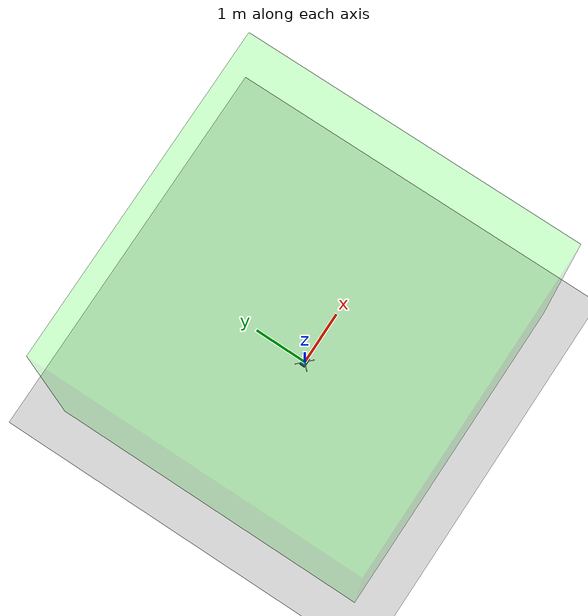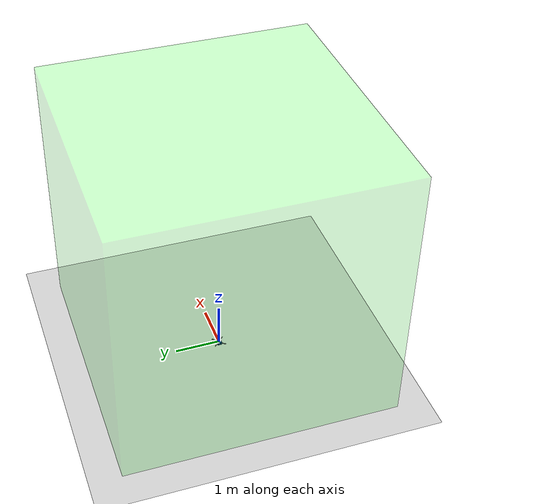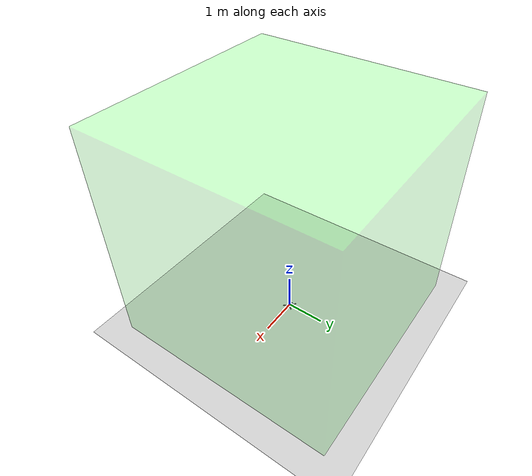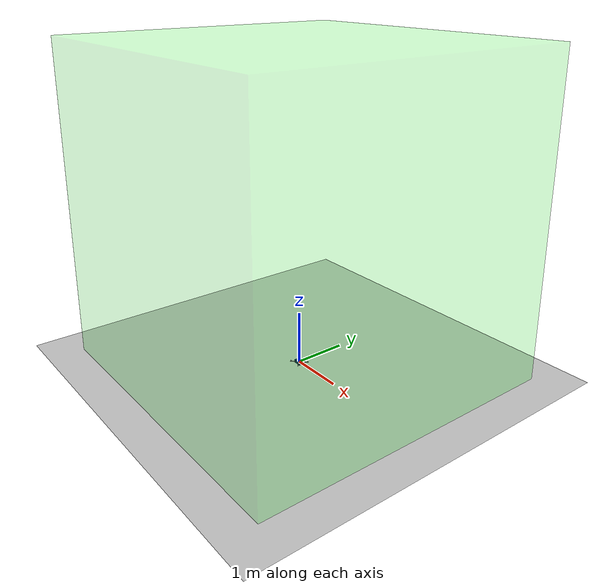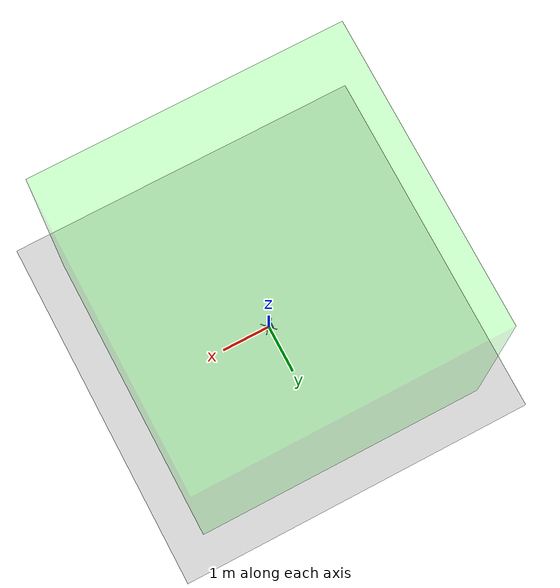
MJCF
<mujoco model="quadrotor_white_falcon">
    <compiler angle="degree" coordinate="local"/>
    <option timestep="0.002" gravity="0 0 -9.81" density="1.225" viscosity="1.789e-5" integrator="RK4" />  wind="10 0 0"
    <default>
        <geom contype="0" conaffinity="0" condim="1" solref="0.001 1" density="0"/>
        <default class="collision">
            <geom group="2" contype="1" type="box" density="0" />
        </default>
    </default>
    <asset>
        <texture builtin="gradient" height="100" width="100" rgb1="0.6 0.8 1.0" rgb2="1 1 1" type="skybox"/>
        <texture name="texplane" builtin="checker" height="100" width="100" rgb1="0.7 0.8 1.0" rgb2="1 1 1" type="2d"/>
        <material name="matplane" texture="texplane" texrepeat="10 10" reflectance="0.2" shininess="0.2" specular="0.5"/>
    </asset>

    <worldbody>
        <light cutoff="100" diffuse="1 1 1" dir="0 0 -1.3" directional="true" exponent="1" pos="0 0 10" specular=".1 .1 .1"/>
        <geom conaffinity="1" condim="3" material="matplane" name="floor" pos="0 0 -0.025" rgba="0.8 0.8 0.8 1" size="10 10 0.2" type="plane"/>
        <geom type="box" size="3 3 3" pos="0 0 2.94" rgba="0 1 0 0.05" conaffinity="0"/>

        <body name="quadrotor" pos="0 0 0">
            <freejoint/>
            <inertial pos="0 0 0" mass="0.835" diaginertia="0.0049 0.0053 0.0098" />
            <geom class="collision" type="box" pos="0 0 0" quat="1 0 0 0" size="0.08 0.05 0.025" rgba="0 0.15 0.47 1" />
            <site name="body_frame" pos="0 0 0" quat="1 0 0 0"/>

            <geom type="box" pos="0.071 0.071 0.0" size="0.075 .005 .005" quat="0.924 0.0 0.0 0.383" rgba=".8 .8 .8 1" />
            <geom type="box" pos="0.071 -0.071 0.0" size="0.075 .005 .005" quat="0.383 0.0 0.0 0.924" rgba=".8 .8 .8 1" />
            <geom type="box" pos="-0.071 -0.071 0.0" size="0.075 .005 .005" quat="-0.383 0.0 0.0 0.924" rgba=".8 .8 .8 1" />
            <geom type="box" pos="-0.071 0.071 0.0" size="0.075 .005 .005" quat="0.924 0.0 0.0 -0.383" rgba=".8 .8 .8 1" />

            <geom type="cylinder" pos="0.11059 0.11059 0.0125" size="0.05 0.0025" quat="1 0 0 0" rgba="1 0.67 0 0.5" />
            <site name="motor0" type="cylinder" pos="0.11059 0.11059 0.0125" size=".01 .0025" quat="1 0 0 0" rgba=".8 .8 .8 1" />

            <geom type="cylinder" pos="0.11059 -0.11059 0.0125" size="0.05 0.0025" quat="1 0 0 0" rgba="1 0.67 0 0.5" />
            <site name="motor1" type="cylinder" pos="0.11059 -0.11059 .0125" size="0.01 0.0025" quat="1 0 0 0" rgba=".8 .8 .8 1" />

            <geom type="cylinder" pos="-0.11059 -0.11059 0.0125" size="0.05 0.0025" quat="1 0 0 0" rgba="1 0.67 0 0.5" />
            <site name="motor2" type="cylinder" pos="-0.11059 -0.11059 .0125" size="0.01 0.0025" quat="1 0 0 0" rgba=".8 .8 .8 1" />

            <geom type="cylinder" pos="-0.11059 0.11059 0.0125" size="0.05 0.0025" quat="1 0 0 0" rgba="1 0.67 0 0.5" />
            <site name="motor3" type="cylinder" pos="-0.11059 0.11059 .0125" size="0.01 0.0025" quat="1 0 0 0" rgba=".8 .8 .8 1" />

            <site name="x_axis" type="box" pos=".1 .0 .0" size=".1 .004 .004" quat="1 0 0 0" rgba="1 0 0 0.2" />
            <site name="y_axis" type="box" pos=".0 .1 .0" size=".1 .004 .004" quat=".707 0 0 .707" rgba="0 1 0 0.2" />
            <site name="z_axis" type="box" pos=".0 .0 .1" size=".1 .004 .004" quat="-.707 0 .707 0" rgba="0 0 1 0.2" />
        </body>

    </worldbody>

    <actuator>
        <motor name="Motor0" ctrllimited="true" ctrlrange="0 14.981" gear="0  0. 1. 0. 0. -0.025" site="motor0" />
        <motor name="Motor1" ctrllimited="true" ctrlrange="0 14.981" gear="0  0. 1. 0. 0. 0.025" site="motor1" />
        <motor name="Motor2" ctrllimited="true" ctrlrange="0 14.981" gear="0  0. 1. 0. 0. -0.025" site="motor2" />
        <motor name="Motor3" ctrllimited="true" ctrlrange="0 14.981" gear="0  0. 1. 0. 0. 0.025" site="motor3" />
    </actuator>

    <sensor>
        <framepos name="Body_pos" objtype="site" objname="body_frame"/>       <!-- datasensor[0:3] -->
        <framequat name="Body_quat" objtype="site" objname="body_frame"/>     <!-- datasensor[3:7] -->
        <framelinvel name="Body_linvel" objtype="site" objname="body_frame" /> <!-- datasensor[7:10] -->
        <gyro name="Body_angvel_local" site="body_frame"/>                    <!-- datasensor[10:13] -->
    </sensor>
</mujoco>
